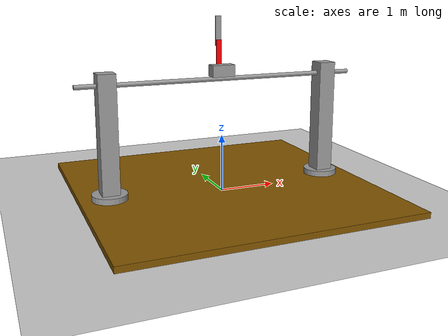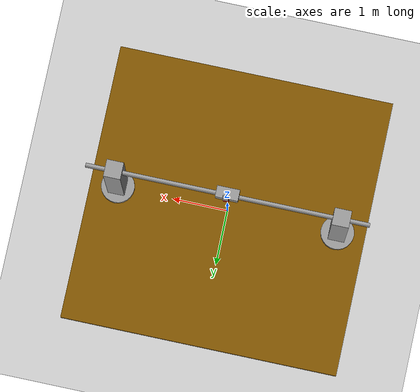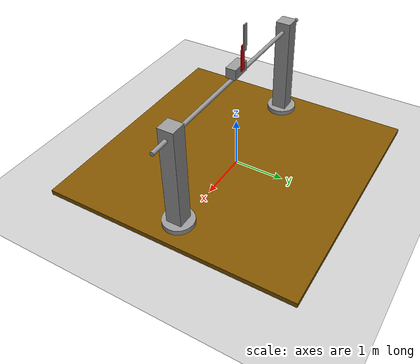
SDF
<?xml version ="1.0" ?>
<sdf version ="1.5">
    <world name ="pendulum_world">

        <include>
            <uri>model://sun</uri>
        </include>

        <include>
            <uri>model://ground_plane</uri>
        </include>

        <include>
            <uri>model://DoublePendulum</uri>
        </include>

    </world>
</sdf>

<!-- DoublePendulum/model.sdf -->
<sdf version='1.6'>
  <model name='DoublePendulum'>
    <link name='Base'>
      <inertial>
        <mass>1000</mass>
        <inertia>
          <ixx>2084.17</ixx>
          <ixy>0</ixy>
          <ixz>0</ixz>
          <iyy>2084.17</iyy>
          <iyz>0</iyz>
          <izz>4166.67</izz>
        </inertia>
        <pose frame=''>0 0 0 0 -0 0</pose>
      </inertial>
      <self_collide>1</self_collide>
      <enable_wind>0</enable_wind>
      <kinematic>0</kinematic>
      <pose frame=''>0 -0 0.05 0 -0 0</pose>
      <gravity>1</gravity>
      <visual name='visual'>
        <geometry>
          <box>
            <size>5 5 0.1</size>
          </box>
        </geometry>
        <material>
          <script>
            <name>Gazebo/Grey</name>
            <uri>file://media/materials/scripts/gazebo.material</uri>
          </script>
          <shader type='pixel'>
            <normal_map>__default__</normal_map>
          </shader>
          <ambient>0.5 0.33 0 1</ambient>
          <diffuse>0.7 0.7 0.7 1</diffuse>
          <specular>0.01 0.01 0.01 1</specular>
          <emissive>0 0 0 1</emissive>
        </material>
        <pose frame=''>0 0 0 0 -0 0</pose>
        <transparency>0</transparency>
        <cast_shadows>1</cast_shadows>
      </visual>
      <collision name='collision'>
        <laser_retro>0</laser_retro>
        <max_contacts>10</max_contacts>
        <pose frame=''>0 0 0 0 -0 0</pose>
        <geometry>
          <box>
            <size>5 5 0.1</size>
          </box>
        </geometry>
        <surface>
          <friction>
            <ode>
              <mu>1</mu>
              <mu2>1</mu2>
              <fdir1>0 0 0</fdir1>
              <slip1>0</slip1>
              <slip2>0</slip2>
            </ode>
            <torsional>
              <coefficient>1</coefficient>
              <patch_radius>0</patch_radius>
              <surface_radius>0</surface_radius>
              <use_patch_radius>1</use_patch_radius>
              <ode>
                <slip>0</slip>
              </ode>
            </torsional>
          </friction>
          <bounce>
            <restitution_coefficient>0</restitution_coefficient>
            <threshold>1e+06</threshold>
          </bounce>
          <contact>
            <collide_without_contact>0</collide_without_contact>
            <collide_without_contact_bitmask>1</collide_without_contact_bitmask>
            <collide_bitmask>1</collide_bitmask>
            <ode>
              <soft_cfm>0</soft_cfm>
              <soft_erp>0.2</soft_erp>
              <kp>1e+13</kp>
              <kd>1</kd>
              <max_vel>0.01</max_vel>
              <min_depth>0</min_depth>
            </ode>
            <bullet>
              <split_impulse>1</split_impulse>
              <split_impulse_penetration_threshold>-0.01</split_impulse_penetration_threshold>
              <soft_cfm>0</soft_cfm>
              <soft_erp>0.2</soft_erp>
              <kp>1e+13</kp>
              <kd>1</kd>
            </bullet>
          </contact>
        </surface>
      </collision>
    </link>
    <link name='Cart'>
      <inertial>
        <mass>1</mass>
        <inertia>
          <ixx>0.166667</ixx>
          <ixy>0</ixy>
          <ixz>0</ixz>
          <iyy>0.166667</iyy>
          <iyz>0</iyz>
          <izz>0.166667</izz>
        </inertia>
        <pose frame=''>0 0 0 0 -0 0</pose>
      </inertial>
      <pose frame=''>-0 0 2.14 0 -0 0</pose>
      <gravity>1</gravity>
      <self_collide>1</self_collide>
      <kinematic>0</kinematic>
      <enable_wind>0</enable_wind>
      <visual name='visual'>
        <pose frame=''>0 0 0 0 -0 0</pose>
        <geometry>
          <box>
            <size>0.4 0.2 0.2</size>
          </box>
        </geometry>
        <material>
          <lighting>1</lighting>
          <script>
            <uri>file://media/materials/scripts/gazebo.material</uri>
            <name>Gazebo/Grey</name>
          </script>
          <shader type='pixel'>
            <normal_map>__default__</normal_map>
          </shader>
          <ambient>0 0 0 1</ambient>
          <diffuse>0.7 0.7 0.7 1</diffuse>
          <specular>0.01 0.01 0.01 1</specular>
          <emissive>0 0 0 1</emissive>
        </material>
        <transparency>0</transparency>
        <cast_shadows>1</cast_shadows>
      </visual>
      <collision name='collision'>
        <laser_retro>0</laser_retro>
        <max_contacts>10</max_contacts>
        <pose frame=''>0 0 0 0 -0 0</pose>
        <geometry>
          <box>
            <size>0.4 0.2 0.2</size>
          </box>
        </geometry>
        <surface>
          <friction>
            <ode>
              <mu>1</mu>
              <mu2>1</mu2>
              <fdir1>0 0 0</fdir1>
              <slip1>0</slip1>
              <slip2>0</slip2>
            </ode>
            <torsional>
              <coefficient>1</coefficient>
              <patch_radius>0</patch_radius>
              <surface_radius>0</surface_radius>
              <use_patch_radius>1</use_patch_radius>
              <ode>
                <slip>0</slip>
              </ode>
            </torsional>
          </friction>
          <bounce>
            <restitution_coefficient>0</restitution_coefficient>
            <threshold>1e+06</threshold>
          </bounce>
          <contact>
            <collide_without_contact>0</collide_without_contact>
            <collide_without_contact_bitmask>1</collide_without_contact_bitmask>
            <collide_bitmask>1</collide_bitmask>
            <ode>
              <soft_cfm>0</soft_cfm>
              <soft_erp>0.2</soft_erp>
              <kp>1e+13</kp>
              <kd>1</kd>
              <max_vel>0.01</max_vel>
              <min_depth>0</min_depth>
            </ode>
            <bullet>
              <split_impulse>1</split_impulse>
              <split_impulse_penetration_threshold>-0.01</split_impulse_penetration_threshold>
              <soft_cfm>0</soft_cfm>
              <soft_erp>0.2</soft_erp>
              <kp>1e+13</kp>
              <kd>1</kd>
            </bullet>
          </contact>
        </surface>
      </collision>
    </link>
    <link name='Fence'>
      <inertial>
        <mass>1</mass>
        <inertia>
          <ixx>0.145833</ixx>
          <ixy>0</ixy>
          <ixz>0</ixz>
          <iyy>0.145833</iyy>
          <iyz>0</iyz>
          <izz>0.125</izz>
        </inertia>
        <pose frame=''>0 0 0 0 -0 0</pose>
      </inertial>
      <pose frame=''>-0 0 2 0 -0 0</pose>
      <gravity>1</gravity>
      <self_collide>1</self_collide>
      <kinematic>0</kinematic>
      <enable_wind>0</enable_wind>
      <visual name='visual'>
        <pose frame=''>0 0 0 0 1.57 0</pose>
        <geometry>
          <cylinder>
            <radius>0.04</radius>
            <length>5</length>
          </cylinder>
        </geometry>
        <material>
          <lighting>1</lighting>
          <script>
            <uri>file://media/materials/scripts/gazebo.material</uri>
            <name>Gazebo/Grey</name>
          </script>
          <shader type='pixel'>
            <normal_map>__default__</normal_map>
          </shader>
          <ambient>0.3 0.3 0.3 1</ambient>
          <diffuse>0.7 0.7 0.7 1</diffuse>
          <specular>0.01 0.01 0.01 1</specular>
          <emissive>0 0 0 1</emissive>
        </material>
        <transparency>0</transparency>
        <cast_shadows>1</cast_shadows>
      </visual>
      <collision name='collision'>
        <laser_retro>0</laser_retro>
        <max_contacts>10</max_contacts>
        <pose frame=''>0 0 0 0 1.57 0</pose>
        <geometry>
          <cylinder>
            <radius>0.04</radius>
            <length>5</length>
          </cylinder>
        </geometry>
        <surface>
          <friction>
            <ode>
              <mu>1</mu>
              <mu2>1</mu2>
              <fdir1>0 0 0</fdir1>
              <slip1>0</slip1>
              <slip2>0</slip2>
            </ode>
            <torsional>
              <coefficient>1</coefficient>
              <patch_radius>0</patch_radius>
              <surface_radius>0</surface_radius>
              <use_patch_radius>1</use_patch_radius>
              <ode>
                <slip>0</slip>
              </ode>
            </torsional>
          </friction>
          <bounce>
            <restitution_coefficient>0</restitution_coefficient>
            <threshold>1e+06</threshold>
          </bounce>
          <contact>
            <collide_without_contact>0</collide_without_contact>
            <collide_without_contact_bitmask>1</collide_without_contact_bitmask>
            <collide_bitmask>1</collide_bitmask>
            <ode>
              <soft_cfm>0</soft_cfm>
              <soft_erp>0.2</soft_erp>
              <kp>1e+13</kp>
              <kd>1</kd>
              <max_vel>0.01</max_vel>
              <min_depth>0</min_depth>
            </ode>
            <bullet>
              <split_impulse>1</split_impulse>
              <split_impulse_penetration_threshold>-0.01</split_impulse_penetration_threshold>
              <soft_cfm>0</soft_cfm>
              <soft_erp>0.2</soft_erp>
              <kp>1e+13</kp>
              <kd>1</kd>
            </bullet>
          </contact>
        </surface>
      </collision>
    </link>
    <link name='FirstPole'>
      <inertial>
        <mass>1</mass>
        <inertia>
          <ixx>0.166667</ixx>
          <ixy>0</ixy>
          <ixz>0</ixz>
          <iyy>0.166667</iyy>
          <iyz>0</iyz>
          <izz>0.166667</izz>
        </inertia>
        <pose frame=''>0 0 0 0 -0 0</pose>
      </inertial>
      <pose frame=''>-0 0.13 2.4 0 -0 0</pose>
      <gravity>1</gravity>
      <self_collide>1</self_collide>
      <kinematic>0</kinematic>
      <enable_wind>0</enable_wind>
      <visual name='visual'>
        <pose frame=''>0 0 0 0 -0 0</pose>
        <geometry>
          <box>
            <size>0.1 0.02 0.5</size>
          </box>
        </geometry>
        <material>
          <lighting>1</lighting>
          <script>
            <uri>file://media/materials/scripts/gazebo.material</uri>
            <name>Gazebo/Grey</name>
          </script>
          <shader type='pixel'>
            <normal_map>__default__</normal_map>
          </shader>
          <ambient>1 0 0 1</ambient>
          <diffuse>0.7 0.7 0.7 1</diffuse>
          <specular>0.01 0.01 0.01 1</specular>
          <emissive>0 0 0 1</emissive>
        </material>
        <transparency>0</transparency>
        <cast_shadows>1</cast_shadows>
      </visual>
      <collision name='collision'>
        <laser_retro>0</laser_retro>
        <max_contacts>10</max_contacts>
        <pose frame=''>0 0 0 0 -0 0</pose>
        <geometry>
          <box>
            <size>0.1 0.02 0.5</size>
          </box>
        </geometry>
        <surface>
          <friction>
            <ode>
              <mu>1</mu>
              <mu2>1</mu2>
              <fdir1>0 0 0</fdir1>
              <slip1>0</slip1>
              <slip2>0</slip2>
            </ode>
            <torsional>
              <coefficient>1</coefficient>
              <patch_radius>0</patch_radius>
              <surface_radius>0</surface_radius>
              <use_patch_radius>1</use_patch_radius>
              <ode>
                <slip>0</slip>
              </ode>
            </torsional>
          </friction>
          <bounce>
            <restitution_coefficient>0</restitution_coefficient>
            <threshold>1e+06</threshold>
          </bounce>
          <contact>
            <collide_without_contact>0</collide_without_contact>
            <collide_without_contact_bitmask>1</collide_without_contact_bitmask>
            <collide_bitmask>1</collide_bitmask>
            <ode>
              <soft_cfm>0</soft_cfm>
              <soft_erp>0.2</soft_erp>
              <kp>1e+13</kp>
              <kd>1</kd>
              <max_vel>0.01</max_vel>
              <min_depth>0</min_depth>
            </ode>
            <bullet>
              <split_impulse>1</split_impulse>
              <split_impulse_penetration_threshold>-0.01</split_impulse_penetration_threshold>
              <soft_cfm>0</soft_cfm>
              <soft_erp>0.2</soft_erp>
              <kp>1e+13</kp>
              <kd>1</kd>
            </bullet>
          </contact>
        </surface>
      </collision>
    </link>
    <link name='LeftBaseCylinder'>
      <inertial>
        <mass>1</mass>
        <inertia>
          <ixx>0.145833</ixx>
          <ixy>0</ixy>
          <ixz>0</ixz>
          <iyy>0.145833</iyy>
          <iyz>0</iyz>
          <izz>0.125</izz>
        </inertia>
        <pose frame=''>0 0 0 0 -0 0</pose>
      </inertial>
      <pose frame=''>-2 0 0.15 0 -0 0</pose>
      <gravity>1</gravity>
      <self_collide>1</self_collide>
      <kinematic>0</kinematic>
      <enable_wind>0</enable_wind>
      <visual name='visual'>
        <pose frame=''>0 0 0 0 -0 0</pose>
        <geometry>
          <cylinder>
            <radius>0.3</radius>
            <length>0.1</length>
          </cylinder>
        </geometry>
        <material>
          <lighting>1</lighting>
          <script>
            <uri>file://media/materials/scripts/gazebo.material</uri>
            <name>Gazebo/Grey</name>
          </script>
          <shader type='pixel'>
            <normal_map>__default__</normal_map>
          </shader>
          <ambient>0.3 0.3 0.3 1</ambient>
          <diffuse>0.7 0.7 0.7 1</diffuse>
          <specular>0.01 0.01 0.01 1</specular>
          <emissive>0 0 0 1</emissive>
        </material>
        <transparency>0</transparency>
        <cast_shadows>1</cast_shadows>
      </visual>
      <collision name='collision'>
        <laser_retro>0</laser_retro>
        <max_contacts>10</max_contacts>
        <pose frame=''>0 0 0 0 -0 0</pose>
        <geometry>
          <cylinder>
            <radius>0.3</radius>
            <length>0.1</length>
          </cylinder>
        </geometry>
        <surface>
          <friction>
            <ode>
              <mu>1</mu>
              <mu2>1</mu2>
              <fdir1>0 0 0</fdir1>
              <slip1>0</slip1>
              <slip2>0</slip2>
            </ode>
            <torsional>
              <coefficient>1</coefficient>
              <patch_radius>0</patch_radius>
              <surface_radius>0</surface_radius>
              <use_patch_radius>1</use_patch_radius>
              <ode>
                <slip>0</slip>
              </ode>
            </torsional>
          </friction>
          <bounce>
            <restitution_coefficient>0</restitution_coefficient>
            <threshold>1e+06</threshold>
          </bounce>
          <contact>
            <collide_without_contact>0</collide_without_contact>
            <collide_without_contact_bitmask>1</collide_without_contact_bitmask>
            <collide_bitmask>1</collide_bitmask>
            <ode>
              <soft_cfm>0</soft_cfm>
              <soft_erp>0.2</soft_erp>
              <kp>1e+13</kp>
              <kd>1</kd>
              <max_vel>0.01</max_vel>
              <min_depth>0</min_depth>
            </ode>
            <bullet>
              <split_impulse>1</split_impulse>
              <split_impulse_penetration_threshold>-0.01</split_impulse_penetration_threshold>
              <soft_cfm>0</soft_cfm>
              <soft_erp>0.2</soft_erp>
              <kp>1e+13</kp>
              <kd>1</kd>
            </bullet>
          </contact>
        </surface>
      </collision>
    </link>
    <link name='LeftColumn'>
      <inertial>
        <mass>1</mass>
        <inertia>
          <ixx>0.166667</ixx>
          <ixy>0</ixy>
          <ixz>0</ixz>
          <iyy>0.166667</iyy>
          <iyz>0</iyz>
          <izz>0.166667</izz>
        </inertia>
        <pose frame=''>0 0 0 0 -0 0</pose>
      </inertial>
      <pose frame=''>-2 0 1.2 0 -0 0</pose>
      <gravity>1</gravity>
      <self_collide>1</self_collide>
      <kinematic>0</kinematic>
      <enable_wind>0</enable_wind>
      <visual name='visual'>
        <pose frame=''>0 0 0 0 -0 0</pose>
        <geometry>
          <box>
            <size>0.3 0.3 2</size>
          </box>
        </geometry>
        <material>
          <lighting>1</lighting>
          <script>
            <uri>file://media/materials/scripts/gazebo.material</uri>
            <name>Gazebo/Grey</name>
          </script>
          <shader type='pixel'>
            <normal_map>__default__</normal_map>
          </shader>
          <ambient>0.3 0.3 0.3 1</ambient>
          <diffuse>0.7 0.7 0.7 1</diffuse>
          <specular>0.01 0.01 0.01 1</specular>
          <emissive>0 0 0 1</emissive>
        </material>
        <transparency>0</transparency>
        <cast_shadows>1</cast_shadows>
      </visual>
      <collision name='collision'>
        <laser_retro>0</laser_retro>
        <max_contacts>10</max_contacts>
        <pose frame=''>0 0 0 0 -0 0</pose>
        <geometry>
          <box>
            <size>0.3 0.3 2</size>
          </box>
        </geometry>
        <surface>
          <friction>
            <ode>
              <mu>1</mu>
              <mu2>1</mu2>
              <fdir1>0 0 0</fdir1>
              <slip1>0</slip1>
              <slip2>0</slip2>
            </ode>
            <torsional>
              <coefficient>1</coefficient>
              <patch_radius>0</patch_radius>
              <surface_radius>0</surface_radius>
              <use_patch_radius>1</use_patch_radius>
              <ode>
                <slip>0</slip>
              </ode>
            </torsional>
          </friction>
          <bounce>
            <restitution_coefficient>0</restitution_coefficient>
            <threshold>1e+06</threshold>
          </bounce>
          <contact>
            <collide_without_contact>0</collide_without_contact>
            <collide_without_contact_bitmask>1</collide_without_contact_bitmask>
            <collide_bitmask>1</collide_bitmask>
            <ode>
              <soft_cfm>0</soft_cfm>
              <soft_erp>0.2</soft_erp>
              <kp>1e+13</kp>
              <kd>1</kd>
              <max_vel>0.01</max_vel>
              <min_depth>0</min_depth>
            </ode>
            <bullet>
              <split_impulse>1</split_impulse>
              <split_impulse_penetration_threshold>-0.01</split_impulse_penetration_threshold>
              <soft_cfm>0</soft_cfm>
              <soft_erp>0.2</soft_erp>
              <kp>1e+13</kp>
              <kd>1</kd>
            </bullet>
          </contact>
        </surface>
      </collision>
    </link>
    <link name='RightBaseCylinder'>
      <inertial>
        <mass>1</mass>
        <inertia>
          <ixx>0.145833</ixx>
          <ixy>0</ixy>
          <ixz>0</ixz>
          <iyy>0.145833</iyy>
          <iyz>0</iyz>
          <izz>0.125</izz>
        </inertia>
        <pose frame=''>0 0 0 0 -0 0</pose>
      </inertial>
      <pose frame=''>2 -0 0.15 0 -0 0</pose>
      <gravity>1</gravity>
      <self_collide>1</self_collide>
      <kinematic>0</kinematic>
      <enable_wind>0</enable_wind>
      <visual name='visual'>
        <pose frame=''>0 0 0 0 -0 0</pose>
        <geometry>
          <cylinder>
            <radius>0.3</radius>
            <length>0.1</length>
          </cylinder>
        </geometry>
        <material>
          <lighting>1</lighting>
          <script>
            <uri>file://media/materials/scripts/gazebo.material</uri>
            <name>Gazebo/Grey</name>
          </script>
          <shader type='pixel'>
            <normal_map>__default__</normal_map>
          </shader>
          <ambient>0.3 0.3 0.3 1</ambient>
          <diffuse>0.7 0.7 0.7 1</diffuse>
          <specular>0.01 0.01 0.01 1</specular>
          <emissive>0 0 0 1</emissive>
        </material>
        <transparency>0</transparency>
        <cast_shadows>1</cast_shadows>
      </visual>
      <collision name='collision'>
        <laser_retro>0</laser_retro>
        <max_contacts>10</max_contacts>
        <pose frame=''>0 0 0 0 -0 0</pose>
        <geometry>
          <cylinder>
            <radius>0.3</radius>
            <length>0.1</length>
          </cylinder>
        </geometry>
        <surface>
          <friction>
            <ode>
              <mu>1</mu>
              <mu2>1</mu2>
              <fdir1>0 0 0</fdir1>
              <slip1>0</slip1>
              <slip2>0</slip2>
            </ode>
            <torsional>
              <coefficient>1</coefficient>
              <patch_radius>0</patch_radius>
              <surface_radius>0</surface_radius>
              <use_patch_radius>1</use_patch_radius>
              <ode>
                <slip>0</slip>
              </ode>
            </torsional>
          </friction>
          <bounce>
            <restitution_coefficient>0</restitution_coefficient>
            <threshold>1e+06</threshold>
          </bounce>
          <contact>
            <collide_without_contact>0</collide_without_contact>
            <collide_without_contact_bitmask>1</collide_without_contact_bitmask>
            <collide_bitmask>1</collide_bitmask>
            <ode>
              <soft_cfm>0</soft_cfm>
              <soft_erp>0.2</soft_erp>
              <kp>1e+13</kp>
              <kd>1</kd>
              <max_vel>0.01</max_vel>
              <min_depth>0</min_depth>
            </ode>
            <bullet>
              <split_impulse>1</split_impulse>
              <split_impulse_penetration_threshold>-0.01</split_impulse_penetration_threshold>
              <soft_cfm>0</soft_cfm>
              <soft_erp>0.2</soft_erp>
              <kp>1e+13</kp>
              <kd>1</kd>
            </bullet>
          </contact>
        </surface>
      </collision>
    </link>
    <link name='RightColumn'>
      <inertial>
        <mass>1</mass>
        <inertia>
          <ixx>0.166667</ixx>
          <ixy>0</ixy>
          <ixz>0</ixz>
          <iyy>0.166667</iyy>
          <iyz>0</iyz>
          <izz>0.166667</izz>
        </inertia>
        <pose frame=''>0 0 -0 0 -0 0</pose>
      </inertial>
      <pose frame=''>2 0 1.2 0 -0 0</pose>
      <gravity>1</gravity>
      <self_collide>1</self_collide>
      <kinematic>0</kinematic>
      <enable_wind>0</enable_wind>
      <visual name='visual'>
        <pose frame=''>0 0 0 0 -0 0</pose>
        <geometry>
          <box>
            <size>0.3 0.3 2</size>
          </box>
        </geometry>
        <material>
          <lighting>1</lighting>
          <script>
            <uri>file://media/materials/scripts/gazebo.material</uri>
            <name>Gazebo/Grey</name>
          </script>
          <shader type='pixel'>
            <normal_map>__default__</normal_map>
          </shader>
          <ambient>0.3 0.3 0.3 1</ambient>
          <diffuse>0.7 0.7 0.7 1</diffuse>
          <specular>0.01 0.01 0.01 1</specular>
          <emissive>0 0 0 1</emissive>
        </material>
        <transparency>0</transparency>
        <cast_shadows>1</cast_shadows>
      </visual>
      <collision name='collision'>
        <laser_retro>0</laser_retro>
        <max_contacts>10</max_contacts>
        <pose frame=''>0 0 -0.04 0 -0 0</pose>
        <geometry>
          <box>
            <size>0.3 0.3 2</size>
          </box>
        </geometry>
        <surface>
          <friction>
            <ode>
              <mu>1</mu>
              <mu2>1</mu2>
              <fdir1>0 0 0</fdir1>
              <slip1>0</slip1>
              <slip2>0</slip2>
            </ode>
            <torsional>
              <coefficient>1</coefficient>
              <patch_radius>0</patch_radius>
              <surface_radius>0</surface_radius>
              <use_patch_radius>1</use_patch_radius>
              <ode>
                <slip>0</slip>
              </ode>
            </torsional>
          </friction>
          <bounce>
            <restitution_coefficient>0</restitution_coefficient>
            <threshold>1e+06</threshold>
          </bounce>
          <contact>
            <collide_without_contact>0</collide_without_contact>
            <collide_without_contact_bitmask>1</collide_without_contact_bitmask>
            <collide_bitmask>1</collide_bitmask>
            <ode>
              <soft_cfm>0</soft_cfm>
              <soft_erp>0.2</soft_erp>
              <kp>1e+13</kp>
              <kd>1</kd>
              <max_vel>0.01</max_vel>
              <min_depth>0</min_depth>
            </ode>
            <bullet>
              <split_impulse>1</split_impulse>
              <split_impulse_penetration_threshold>-0.01</split_impulse_penetration_threshold>
              <soft_cfm>0</soft_cfm>
              <soft_erp>0.2</soft_erp>
              <kp>1e+13</kp>
              <kd>1</kd>
            </bullet>
          </contact>
        </surface>
      </collision>
    </link>
    <link name='SecondPole'>
      <inertial>
        <mass>1</mass>
        <inertia>
          <ixx>0.166667</ixx>
          <ixy>0</ixy>
          <ixz>0</ixz>
          <iyy>0.166667</iyy>
          <iyz>0</iyz>
          <izz>0.166667</izz>
        </inertia>
        <pose frame=''>0 0 0 0 -0 0</pose>
      </inertial>
      <pose frame=''>-0 0.17 2.8 0 -0 0</pose>
      <gravity>1</gravity>
      <self_collide>1</self_collide>
      <kinematic>0</kinematic>
      <enable_wind>0</enable_wind>
      <visual name='visual'>
        <pose frame=''>0 0 0 0 -0 0</pose>
        <geometry>
          <box>
            <size>0.1 0.02 0.5</size>
          </box>
        </geometry>
        <material>
          <lighting>1</lighting>
          <script>
            <uri>file://media/materials/scripts/gazebo.material</uri>
            <name>Gazebo/Grey</name>
          </script>
          <shader type='pixel'>
            <normal_map>__default__</normal_map>
          </shader>
          <ambient>1 1 1 1</ambient>
          <diffuse>0.7 0.7 0.7 1</diffuse>
          <specular>0.01 0.01 0.01 1</specular>
          <emissive>0 0 0 1</emissive>
        </material>
        <transparency>0</transparency>
        <cast_shadows>1</cast_shadows>
      </visual>
      <collision name='collision'>
        <laser_retro>0</laser_retro>
        <max_contacts>10</max_contacts>
        <pose frame=''>0 0 0 0 -0 0</pose>
        <geometry>
          <box>
            <size>0.1 0.01 0.5</size>
          </box>
        </geometry>
        <surface>
          <friction>
            <ode>
              <mu>1</mu>
              <mu2>1</mu2>
              <fdir1>0 0 0</fdir1>
              <slip1>0</slip1>
              <slip2>0</slip2>
            </ode>
            <torsional>
              <coefficient>1</coefficient>
              <patch_radius>0</patch_radius>
              <surface_radius>0</surface_radius>
              <use_patch_radius>1</use_patch_radius>
              <ode>
                <slip>0</slip>
              </ode>
            </torsional>
          </friction>
          <bounce>
            <restitution_coefficient>0</restitution_coefficient>
            <threshold>1e+06</threshold>
          </bounce>
          <contact>
            <collide_without_contact>0</collide_without_contact>
            <collide_without_contact_bitmask>1</collide_without_contact_bitmask>
            <collide_bitmask>1</collide_bitmask>
            <ode>
              <soft_cfm>0</soft_cfm>
              <soft_erp>0.2</soft_erp>
              <kp>1e+13</kp>
              <kd>1</kd>
              <max_vel>0.01</max_vel>
              <min_depth>0</min_depth>
            </ode>
            <bullet>
              <split_impulse>1</split_impulse>
              <split_impulse_penetration_threshold>-0.01</split_impulse_penetration_threshold>
              <soft_cfm>0</soft_cfm>
              <soft_erp>0.2</soft_erp>
              <kp>1e+13</kp>
              <kd>1</kd>
            </bullet>
          </contact>
        </surface>
      </collision>
    </link>
    <joint name='BaseLeftBaseCylinder' type='fixed'>
      <parent>Base</parent>
      <child>LeftBaseCylinder</child>
      <pose frame=''>0 0 0 0 -0 0</pose>
      <physics>
        <ode>
          <limit>
            <cfm>0</cfm>
            <erp>0.2</erp>
          </limit>
          <suspension>
            <cfm>0</cfm>
            <erp>0.2</erp>
          </suspension>
        </ode>
      </physics>
    </joint>
    <joint name='BaseRightBaseCylinder' type='fixed'>
      <parent>Base</parent>
      <child>RightBaseCylinder</child>
      <pose frame=''>0 0 0 0 -0 0</pose>
      <physics>
        <ode>
          <limit>
            <cfm>0</cfm>
            <erp>0.2</erp>
          </limit>
          <suspension>
            <cfm>0</cfm>
            <erp>0.2</erp>
          </suspension>
        </ode>
      </physics>
    </joint>
    <joint name='CartFirstPoleRevolute' type='revolute'>
      <parent>Cart</parent>
      <child>FirstPole</child>
      <pose frame=''>0 0 -0.2 0 -0 0</pose>
      <axis>
        <xyz>0 1 0</xyz>
        <use_parent_model_frame>0</use_parent_model_frame>
        <limit>
          <lower>-1.79769e+308</lower>
          <upper>1.79769e+308</upper>
          <effort>-1</effort>
          <velocity>-1</velocity>
        </limit>
        <dynamics>
          <spring_reference>0</spring_reference>
          <spring_stiffness>0</spring_stiffness>
          <damping>0</damping>
          <friction>0</friction>
        </dynamics>
      </axis>
      <physics>
        <ode>
          <limit>
            <cfm>0</cfm>
            <erp>0.2</erp>
          </limit>
          <suspension>
            <cfm>0</cfm>
            <erp>0.2</erp>
          </suspension>
        </ode>
      </physics>
    </joint>
    <joint name='FenceCartPrismatic' type='prismatic'>
      <parent>Fence</parent>
      <child>Cart</child>
      <pose frame=''>0 0 -0.1 0 -0 0</pose>
      <axis>
        <xyz>1 0 0</xyz>
        <use_parent_model_frame>0</use_parent_model_frame>
        <limit>
          <lower>-1.79769e+308</lower>
          <upper>1.79769e+308</upper>
          <effort>-1</effort>
          <velocity>-1</velocity>
        </limit>
        <dynamics>
          <spring_reference>0</spring_reference>
          <spring_stiffness>0</spring_stiffness>
          <damping>0</damping>
          <friction>0</friction>
        </dynamics>
      </axis>
      <physics>
        <ode>
          <limit>
            <cfm>0</cfm>
            <erp>0.2</erp>
          </limit>
          <suspension>
            <cfm>0</cfm>
            <erp>0.2</erp>
          </suspension>
        </ode>
      </physics>
    </joint>
    <joint name='FirstPoleSecondPoleRevolute' type='revolute'>
      <parent>FirstPole</parent>
      <child>SecondPole</child>
      <pose frame=''>0 0 -0.2 0 -0 0</pose>
      <axis>
        <xyz>0 1 0</xyz>
        <use_parent_model_frame>0</use_parent_model_frame>
        <limit>
          <lower>-1.79769e+308</lower>
          <upper>1.79769e+308</upper>
          <effort>-1</effort>
          <velocity>-1</velocity>
        </limit>
        <dynamics>
          <spring_reference>0</spring_reference>
          <spring_stiffness>0</spring_stiffness>
          <damping>0</damping>
          <friction>0</friction>
        </dynamics>
      </axis>
      <physics>
        <ode>
          <limit>
            <cfm>0</cfm>
            <erp>0.2</erp>
          </limit>
          <suspension>
            <cfm>0</cfm>
            <erp>0.2</erp>
          </suspension>
        </ode>
      </physics>
    </joint>
    <joint name='LeftBaseCylinderLeftColumnFixed' type='fixed'>
      <parent>LeftBaseCylinder</parent>
      <child>LeftColumn</child>
      <pose frame=''>0 0 0 0 -0 0</pose>
      <physics>
        <ode>
          <limit>
            <cfm>0</cfm>
            <erp>0.2</erp>
          </limit>
          <suspension>
            <cfm>0</cfm>
            <erp>0.2</erp>
          </suspension>
        </ode>
      </physics>
    </joint>
    <joint name='LeftColumnFenceFixed' type='fixed'>
      <parent>LeftColumn</parent>
      <child>Fence</child>
      <pose frame=''>0 0 0 0 -0 0</pose>
      <physics>
        <ode>
          <limit>
            <cfm>0</cfm>
            <erp>0.2</erp>
          </limit>
          <suspension>
            <cfm>0</cfm>
            <erp>0.2</erp>
          </suspension>
        </ode>
      </physics>
    </joint>
    <joint name='RightBaseCylinderRightColumnFixed' type='fixed'>
      <parent>RightBaseCylinder</parent>
      <child>RightColumn</child>
      <pose frame=''>0 0 0 0 -0 0</pose>
      <physics>
        <ode>
          <limit>
            <cfm>0</cfm>
            <erp>0.2</erp>
          </limit>
          <suspension>
            <cfm>0</cfm>
            <erp>0.2</erp>
          </suspension>
        </ode>
      </physics>
    </joint>
    <joint name='RightColumnFenceFixed' type='fixed'>
      <parent>RightColumn</parent>
      <child>Fence</child>
      <pose frame=''>0 0 0 0 -0 0</pose>
      <physics>
        <ode>
          <limit>
            <cfm>0</cfm>
            <erp>0.2</erp>
          </limit>
          <suspension>
            <cfm>0</cfm>
            <erp>0.2</erp>
          </suspension>
        </ode>
      </physics>
    </joint>
    <static>0</static>
    <allow_auto_disable>1</allow_auto_disable>
    <plugin name='add_force' filename='libadd_force.so'/>
  </model>
</sdf>
